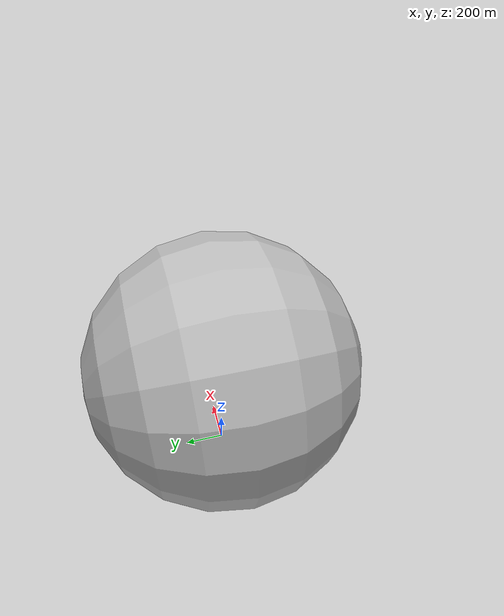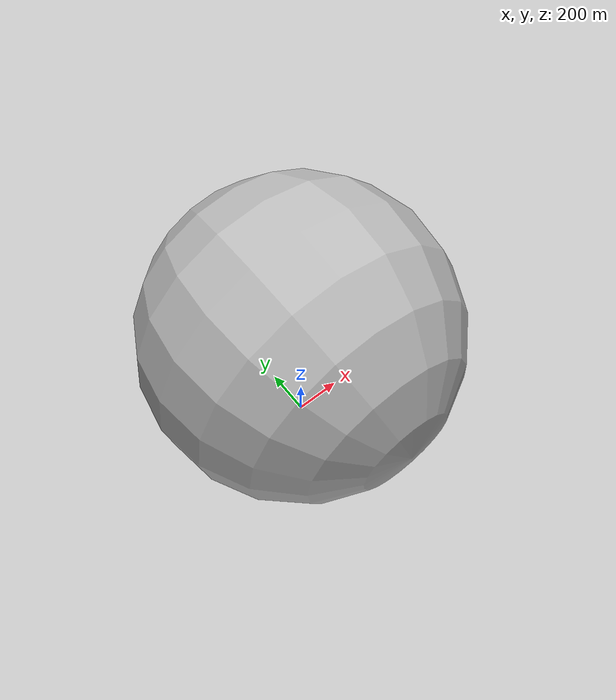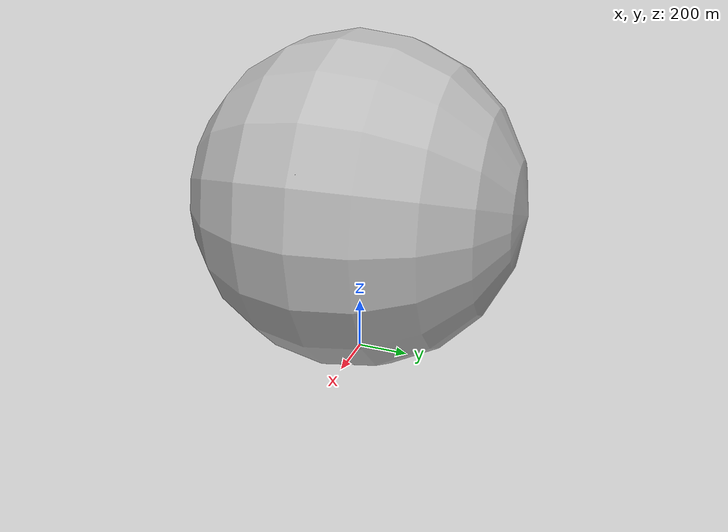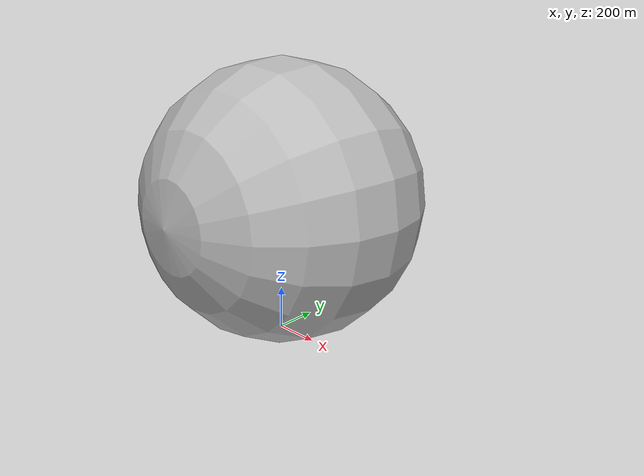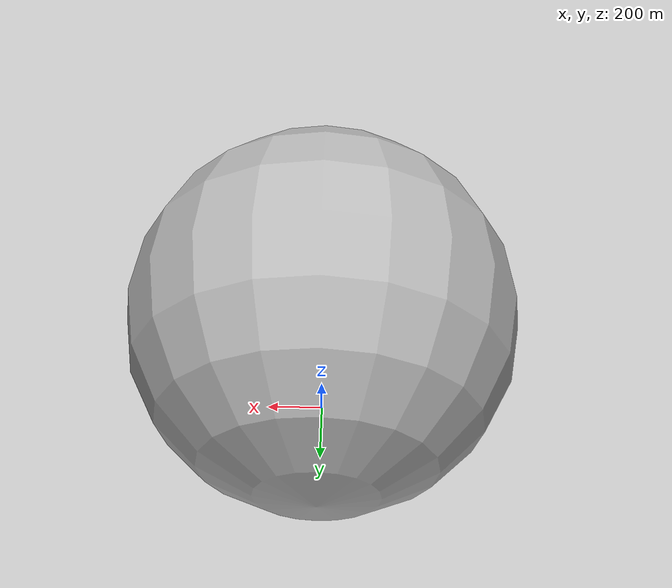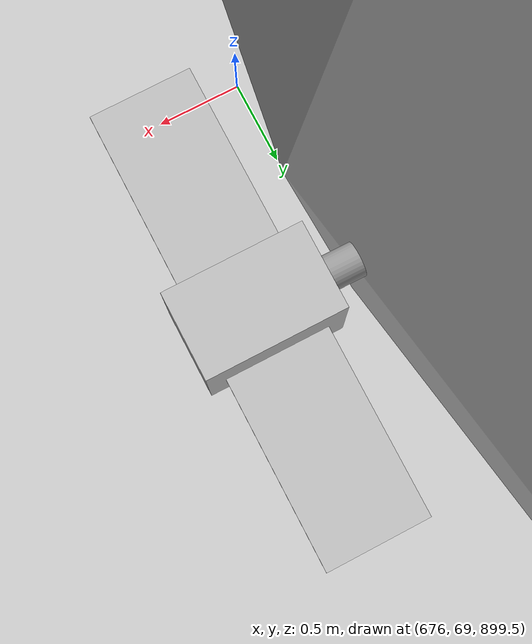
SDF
<sdf version="1.7">
 <world name="default">
  <light name="sun" type="directional">
   <pose>0 0 10 0 -0 0</pose>
   <diffuse>0.8 0.8 0.8 1</diffuse>
   <specular>0.2 0.2 0.2 1</specular>
   <attenuation>
    <range>1000</range>
    <constant>0.9</constant>
    <linear>0.01</linear>
    <quadratic>0.001</quadratic>
   </attenuation>
   <direction>-0.5 0.1 -0.9</direction>
   <spot><inner_angle>0</inner_angle><outer_angle>0</outer_angle><falloff>0</falloff></spot>
  </light>
  <gravity>0 0 0</gravity>
  <magnetic_field>6e-06 2.3e-05 -4.2e-05</magnetic_field>
  <atmosphere type="adiabatic"/>
  <physics type="ode">
   <max_step_size>0.001</max_step_size>
   <real_time_factor>1</real_time_factor>
   <real_time_update_rate>1000</real_time_update_rate>
  </physics>
  <scene><ambient>0.4 0.4 0.4 1</ambient><background>0 0 0 1</background><shadows>1</shadows></scene>
  <spherical_coordinates>
   <surface_model>EARTH_WGS84</surface_model>
   <latitude_deg>0</latitude_deg>
   <longitude_deg>0</longitude_deg>
   <elevation>0</elevation>
   <heading_deg>0</heading_deg>
  </spherical_coordinates>
  <model name="earth">
   <link name="earth">
    <inertial>
     <mass>1</mass>
     <inertia><ixx>1</ixx><ixy>0</ixy><ixz>0</ixz><iyy>100</iyy><iyz>0</iyz><izz>1</izz></inertia>
    </inertial>
    <collision name="earth_collision">
     <pose>0 0 0 1.57159 -0.001593 -3.14159</pose>
     <geometry><sphere><radius>637.1</radius></sphere></geometry>
    </collision>
    <visual name="earth_visual">
     <pose>0 0 0 1.57159 -0.001593 -3.14159</pose>
     <geometry><sphere><radius>637.1</radius></sphere></geometry>
     <material>
      <script><name>planet/earth</name><uri>file://media/materials/scripts/gazebo.material</uri></script>
     </material>
    </visual>
    <gravity>0</gravity>
   </link>
   <pose>0 0 639.172 0 -0 0</pose>
  </model>
  <model name="deputy">
   <link name="body_link">
    <inertial>
     <pose>0.184091 0 0 0 -0 0</pose>
     <mass>2.2</mass>
     <inertia>
      <ixx>2.072</ixx>
      <ixy>1.27739e-18</ixy>
      <ixz>0</ixz>
      <iyy>200.089</iyy>
      <iyz>0</iyz>
      <izz>2.16147</izz>
     </inertia>
    </inertial>
    <collision name="body_link_collision"><geometry><box><size>0.8 0.5 0.6</size></box></geometry></collision>
    <collision name="body_link_fixed_joint_lump__dock_link_collision_1">
     <pose>0.405 0 0 -3.13416 1.57079 -3.14159</pose>
     <geometry>
      <mesh>
       <scale>1 1 1</scale>
       <uri>/home/qwerty/catkin_ws/src/ss_sim/meshes/hollow_cylinder_closed.stl</uri>
      </mesh>
     </geometry>
    </collision>
    <collision name="body_link_fixed_joint_lump__plate_l_collision_2">
     <pose>0 -0.6 0 0 -0 0</pose>
     <geometry><box><size>0.6 1.5 0.02</size></box></geometry>
    </collision>
    <collision name="body_link_fixed_joint_lump__plate_r_collision_3">
     <pose>0 0.6 0 0 -0 0</pose>
     <geometry><box><size>0.6 1.5 0.02</size></box></geometry>
    </collision>
    <visual name="body_link_visual">
     <geometry><box><size>0.8 0.5 0.6</size></box></geometry>
     <material>
      <script><name>sat/body</name><uri>file://media/materials/scripts/gazebo.material</uri></script>
     </material>
    </visual>
    <visual name="body_link_fixed_joint_lump__dock_link_visual_1">
     <pose>0.405 0 0 -3.13416 1.57079 -3.14159</pose>
     <geometry>
      <mesh>
       <scale>1 1 1</scale>
       <uri>/home/qwerty/catkin_ws/src/ss_sim/meshes/hollow_cylinder_closed.stl</uri>
      </mesh>
     </geometry>
     <material>
      <script><name>Gazebo/Grey</name><uri>file://media/materials/scripts/gazebo.material</uri></script>
     </material>
    </visual>
    <visual name="body_link_fixed_joint_lump__plate_l_visual_2">
     <pose>0 -0.6 0 0 -0 0</pose>
     <geometry><box><size>0.6 1.5 0.02</size></box></geometry>
     <material>
      <script><name>sat/plate</name><uri>file://media/materials/scripts/gazebo.material</uri></script>
     </material>
    </visual>
    <visual name="body_link_fixed_joint_lump__plate_r_visual_3">
     <pose>0 0.6 0 0 -0 0</pose>
     <geometry><box><size>0.6 1.5 0.02</size></box></geometry>
     <material>
      <script><name>sat/plate</name><uri>file://media/materials/scripts/gazebo.material</uri></script>
     </material>
    </visual>
    <gravity>0</gravity>
    <self_collide>1</self_collide>
    <gravity>0</gravity>
    <self_collide>1</self_collide>
   </link>
   <frame name="dock_joint" attached_to="body_link"><pose>0.405 0 0 0 -0 0</pose></frame>
   <frame name="dock_link" attached_to="dock_joint"/>
   <frame name="plate_l_joint" attached_to="body_link"><pose>0 -0.6 0 0 -0 0</pose></frame>
   <frame name="plate_l" attached_to="plate_l_joint"/>
   <frame name="plate_r_joint" attached_to="body_link"><pose>0 0.6 0 0 -0 0</pose></frame>
   <frame name="plate_r" attached_to="plate_r_joint"/>
   <pose>676.556 70.3136 900 0 -0 3.14159</pose>
  </model>
 </world>
</sdf>
